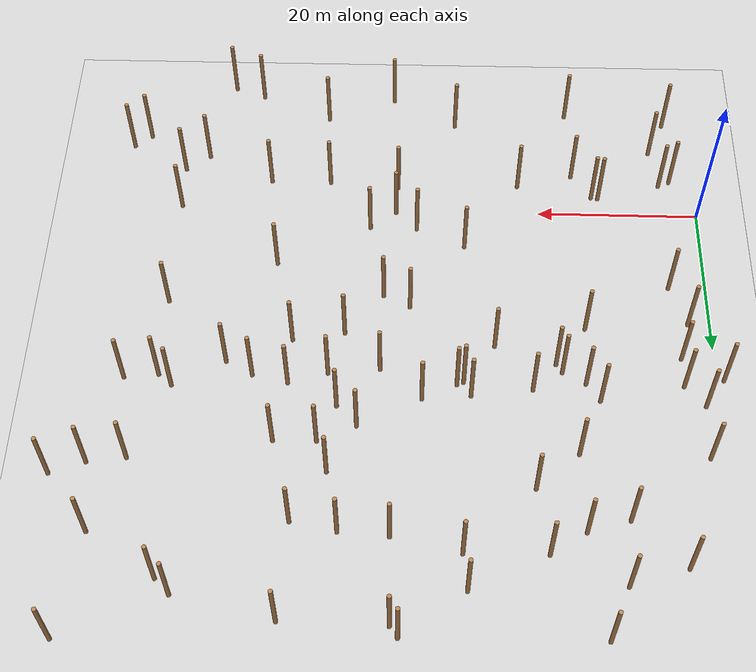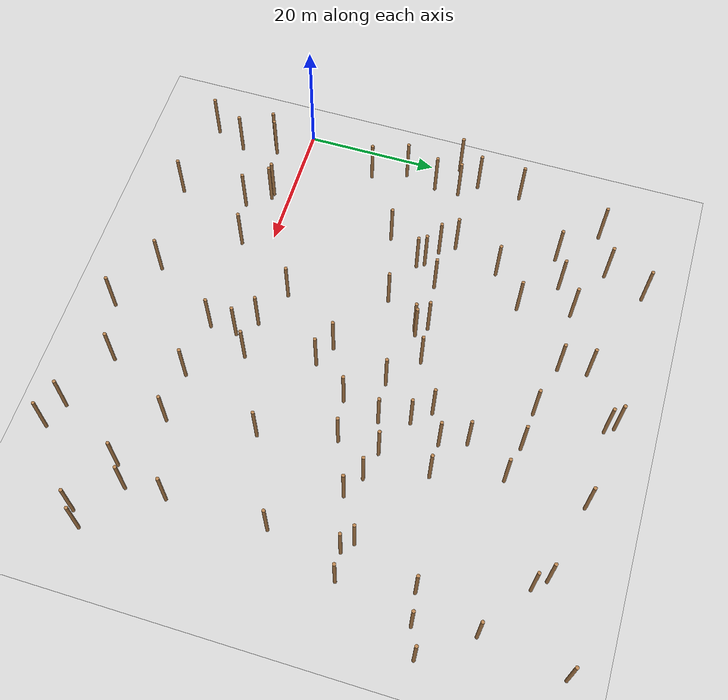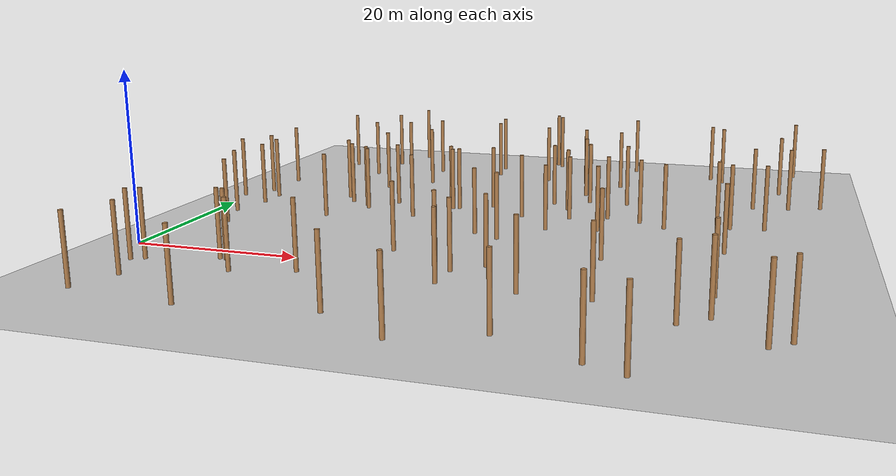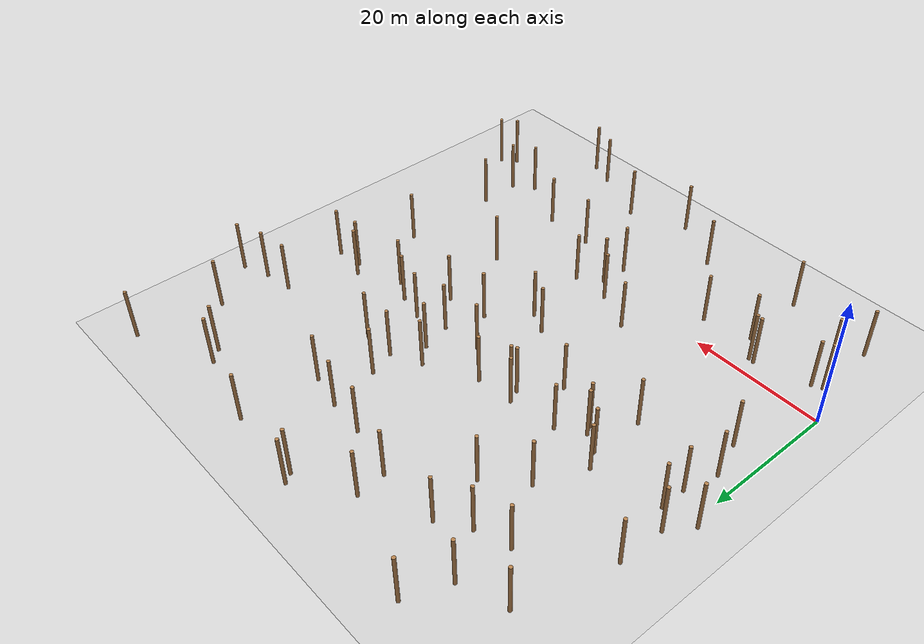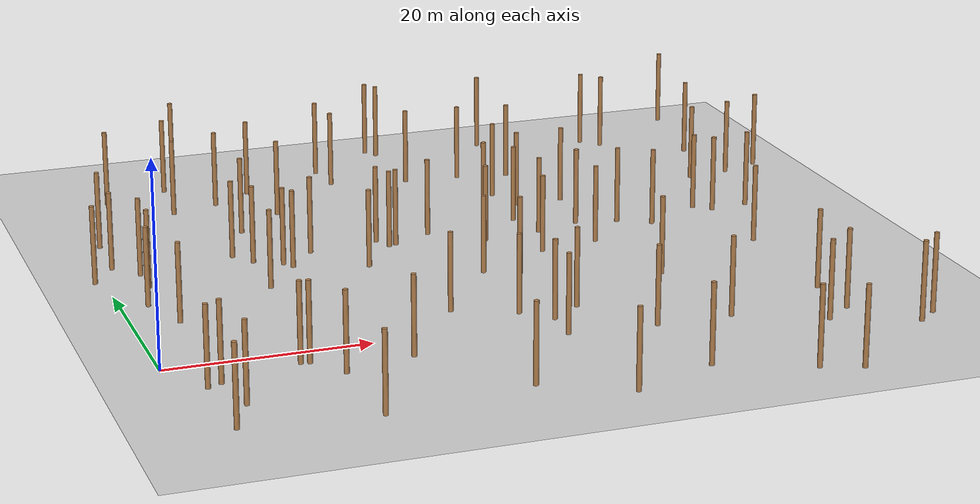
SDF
<sdf version="1.5">
 <world name="padure_tactica">
  <include><uri>model://sun</uri></include>
  <include><uri>model://ground_plane</uri></include>
  <model name="tree_1">
   <static>true</static>
   <pose>65.14 -0.28 4.0 0 0 0</pose>
   <link name="link">
    <collision name="collision">
     <geometry><cylinder><radius>0.25</radius><length>8.0</length></cylinder></geometry>
    </collision>
    <visual name="visual">
     <geometry><cylinder><radius>0.25</radius><length>8.0</length></cylinder></geometry>
     <material>
      <script><uri>file://media/materials/scripts/gazebo.material</uri><name>Gazebo/Wood</name></script>
     </material>
    </visual>
   </link>
  </model>
  <model name="tree_53">
   <static>true</static>
   <pose>54.32 24.84 4.0 0 0 0</pose>
   <link name="link">
    <collision name="collision">
     <geometry><cylinder><radius>0.25</radius><length>8.0</length></cylinder></geometry>
    </collision>
    <visual name="visual">
     <geometry><cylinder><radius>0.25</radius><length>8.0</length></cylinder></geometry>
     <material>
      <script><uri>file://media/materials/scripts/gazebo.material</uri><name>Gazebo/Wood</name></script>
     </material>
    </visual>
   </link>
  </model>
  <model name="tree_56">
   <static>true</static>
   <pose>69.32 25.48 4.0 0 0 0</pose>
   <link name="link">
    <collision name="collision">
     <geometry><cylinder><radius>0.25</radius><length>8.0</length></cylinder></geometry>
    </collision>
    <visual name="visual">
     <geometry><cylinder><radius>0.25</radius><length>8.0</length></cylinder></geometry>
     <material>
      <script><uri>file://media/materials/scripts/gazebo.material</uri><name>Gazebo/Wood</name></script>
     </material>
    </visual>
   </link>
  </model>
  <model name="tree_80">
   <static>true</static>
   <pose>20.35 46.98 4.0 0 0 0</pose>
   <link name="link">
    <collision name="collision">
     <geometry><cylinder><radius>0.25</radius><length>8.0</length></cylinder></geometry>
    </collision>
    <visual name="visual">
     <geometry><cylinder><radius>0.25</radius><length>8.0</length></cylinder></geometry>
     <material>
      <script><uri>file://media/materials/scripts/gazebo.material</uri><name>Gazebo/Wood</name></script>
     </material>
    </visual>
   </link>
  </model>
  <model name="tree_105">
   <static>true</static>
   <pose>38.56 -18.85 4.0 0 0 0</pose>
   <link name="link">
    <collision name="collision">
     <geometry><cylinder><radius>0.25</radius><length>8.0</length></cylinder></geometry>
    </collision>
    <visual name="visual">
     <geometry><cylinder><radius>0.25</radius><length>8.0</length></cylinder></geometry>
     <material>
      <script><uri>file://media/materials/scripts/gazebo.material</uri><name>Gazebo/Wood</name></script>
     </material>
    </visual>
   </link>
  </model>
  <model name="tree_111">
   <static>true</static>
   <pose>12.36 -2.54 4.0 0 0 0</pose>
   <link name="link">
    <collision name="collision">
     <geometry><cylinder><radius>0.25</radius><length>8.0</length></cylinder></geometry>
    </collision>
    <visual name="visual">
     <geometry><cylinder><radius>0.25</radius><length>8.0</length></cylinder></geometry>
     <material>
      <script><uri>file://media/materials/scripts/gazebo.material</uri><name>Gazebo/Wood</name></script>
     </material>
    </visual>
   </link>
  </model>
  <model name="tree_124">
   <static>true</static>
   <pose>43.71 18.72 4.0 0 0 0</pose>
   <link name="link">
    <collision name="collision">
     <geometry><cylinder><radius>0.25</radius><length>8.0</length></cylinder></geometry>
    </collision>
    <visual name="visual">
     <geometry><cylinder><radius>0.25</radius><length>8.0</length></cylinder></geometry>
     <material>
      <script><uri>file://media/materials/scripts/gazebo.material</uri><name>Gazebo/Wood</name></script>
     </material>
    </visual>
   </link>
  </model>
  <model name="tree_131">
   <static>true</static>
   <pose>22.55 -4.33 4.0 0 0 0</pose>
   <link name="link">
    <collision name="collision">
     <geometry><cylinder><radius>0.25</radius><length>8.0</length></cylinder></geometry>
    </collision>
    <visual name="visual">
     <geometry><cylinder><radius>0.25</radius><length>8.0</length></cylinder></geometry>
     <material>
      <script><uri>file://media/materials/scripts/gazebo.material</uri><name>Gazebo/Wood</name></script>
     </material>
    </visual>
   </link>
  </model>
  <model name="tree_143">
   <static>true</static>
   <pose>18.70 22.62 4.0 0 0 0</pose>
   <link name="link">
    <collision name="collision">
     <geometry><cylinder><radius>0.25</radius><length>8.0</length></cylinder></geometry>
    </collision>
    <visual name="visual">
     <geometry><cylinder><radius>0.25</radius><length>8.0</length></cylinder></geometry>
     <material>
      <script><uri>file://media/materials/scripts/gazebo.material</uri><name>Gazebo/Wood</name></script>
     </material>
    </visual>
   </link>
  </model>
  <model name="tree_144">
   <static>true</static>
   <pose>65.26 -6.29 4.0 0 0 0</pose>
   <link name="link">
    <collision name="collision">
     <geometry><cylinder><radius>0.25</radius><length>8.0</length></cylinder></geometry>
    </collision>
    <visual name="visual">
     <geometry><cylinder><radius>0.25</radius><length>8.0</length></cylinder></geometry>
     <material>
      <script><uri>file://media/materials/scripts/gazebo.material</uri><name>Gazebo/Wood</name></script>
     </material>
    </visual>
   </link>
  </model>
  <model name="tree_149">
   <static>true</static>
   <pose>62.78 50.66 4.0 0 0 0</pose>
   <link name="link">
    <collision name="collision">
     <geometry><cylinder><radius>0.25</radius><length>8.0</length></cylinder></geometry>
    </collision>
    <visual name="visual">
     <geometry><cylinder><radius>0.25</radius><length>8.0</length></cylinder></geometry>
     <material>
      <script><uri>file://media/materials/scripts/gazebo.material</uri><name>Gazebo/Wood</name></script>
     </material>
    </visual>
   </link>
  </model>
  <model name="tree_153">
   <static>true</static>
   <pose>21.58 39.05 4.0 0 0 0</pose>
   <link name="link">
    <collision name="collision">
     <geometry><cylinder><radius>0.25</radius><length>8.0</length></cylinder></geometry>
    </collision>
    <visual name="visual">
     <geometry><cylinder><radius>0.25</radius><length>8.0</length></cylinder></geometry>
     <material>
      <script><uri>file://media/materials/scripts/gazebo.material</uri><name>Gazebo/Wood</name></script>
     </material>
    </visual>
   </link>
  </model>
  <model name="tree_221">
   <static>true</static>
   <pose>4.46 -4.79 4.0 0 0 0</pose>
   <link name="link">
    <collision name="collision">
     <geometry><cylinder><radius>0.25</radius><length>8.0</length></cylinder></geometry>
    </collision>
    <visual name="visual">
     <geometry><cylinder><radius>0.25</radius><length>8.0</length></cylinder></geometry>
     <material>
      <script><uri>file://media/materials/scripts/gazebo.material</uri><name>Gazebo/Wood</name></script>
     </material>
    </visual>
   </link>
  </model>
  <model name="tree_229">
   <static>true</static>
   <pose>15.61 -6.13 4.0 0 0 0</pose>
   <link name="link">
    <collision name="collision">
     <geometry><cylinder><radius>0.25</radius><length>8.0</length></cylinder></geometry>
    </collision>
    <visual name="visual">
     <geometry><cylinder><radius>0.25</radius><length>8.0</length></cylinder></geometry>
     <material>
      <script><uri>file://media/materials/scripts/gazebo.material</uri><name>Gazebo/Wood</name></script>
     </material>
    </visual>
   </link>
  </model>
  <model name="tree_241">
   <static>true</static>
   <pose>5.40 48.29 4.0 0 0 0</pose>
   <link name="link">
    <collision name="collision">
     <geometry><cylinder><radius>0.25</radius><length>8.0</length></cylinder></geometry>
    </collision>
    <visual name="visual">
     <geometry><cylinder><radius>0.25</radius><length>8.0</length></cylinder></geometry>
     <material>
      <script><uri>file://media/materials/scripts/gazebo.material</uri><name>Gazebo/Wood</name></script>
     </material>
    </visual>
   </link>
  </model>
  <model name="tree_267">
   <static>true</static>
   <pose>44.26 28.86 4.0 0 0 0</pose>
   <link name="link">
    <collision name="collision">
     <geometry><cylinder><radius>0.25</radius><length>8.0</length></cylinder></geometry>
    </collision>
    <visual name="visual">
     <geometry><cylinder><radius>0.25</radius><length>8.0</length></cylinder></geometry>
     <material>
      <script><uri>file://media/materials/scripts/gazebo.material</uri><name>Gazebo/Wood</name></script>
     </material>
    </visual>
   </link>
  </model>
  <model name="tree_271">
   <static>true</static>
   <pose>62.36 -8.54 4.0 0 0 0</pose>
   <link name="link">
    <collision name="collision">
     <geometry><cylinder><radius>0.25</radius><length>8.0</length></cylinder></geometry>
    </collision>
    <visual name="visual">
     <geometry><cylinder><radius>0.25</radius><length>8.0</length></cylinder></geometry>
     <material>
      <script><uri>file://media/materials/scripts/gazebo.material</uri><name>Gazebo/Wood</name></script>
     </material>
    </visual>
   </link>
  </model>
  <model name="tree_276">
   <static>true</static>
   <pose>25.87 20.22 4.0 0 0 0</pose>
   <link name="link">
    <collision name="collision">
     <geometry><cylinder><radius>0.25</radius><length>8.0</length></cylinder></geometry>
    </collision>
    <visual name="visual">
     <geometry><cylinder><radius>0.25</radius><length>8.0</length></cylinder></geometry>
     <material>
      <script><uri>file://media/materials/scripts/gazebo.material</uri><name>Gazebo/Wood</name></script>
     </material>
    </visual>
   </link>
  </model>
  <model name="tree_288">
   <static>true</static>
   <pose>37.76 45.23 4.0 0 0 0</pose>
   <link name="link">
    <collision name="collision">
     <geometry><cylinder><radius>0.25</radius><length>8.0</length></cylinder></geometry>
    </collision>
    <visual name="visual">
     <geometry><cylinder><radius>0.25</radius><length>8.0</length></cylinder></geometry>
     <material>
      <script><uri>file://media/materials/scripts/gazebo.material</uri><name>Gazebo/Wood</name></script>
     </material>
    </visual>
   </link>
  </model>
  <model name="tree_304">
   <static>true</static>
   <pose>30.37 25.66 4.0 0 0 0</pose>
   <link name="link">
    <collision name="collision">
     <geometry><cylinder><radius>0.25</radius><length>8.0</length></cylinder></geometry>
    </collision>
    <visual name="visual">
     <geometry><cylinder><radius>0.25</radius><length>8.0</length></cylinder></geometry>
     <material>
      <script><uri>file://media/materials/scripts/gazebo.material</uri><name>Gazebo/Wood</name></script>
     </material>
    </visual>
   </link>
  </model>
  <model name="tree_309">
   <static>true</static>
   <pose>41.87 31.44 4.0 0 0 0</pose>
   <link name="link">
    <collision name="collision">
     <geometry><cylinder><radius>0.25</radius><length>8.0</length></cylinder></geometry>
    </collision>
    <visual name="visual">
     <geometry><cylinder><radius>0.25</radius><length>8.0</length></cylinder></geometry>
     <material>
      <script><uri>file://media/materials/scripts/gazebo.material</uri><name>Gazebo/Wood</name></script>
     </material>
    </visual>
   </link>
  </model>
  <model name="tree_318">
   <static>true</static>
   <pose>30.53 -14.52 4.0 0 0 0</pose>
   <link name="link">
    <collision name="collision">
     <geometry><cylinder><radius>0.25</radius><length>8.0</length></cylinder></geometry>
    </collision>
    <visual name="visual">
     <geometry><cylinder><radius>0.25</radius><length>8.0</length></cylinder></geometry>
     <material>
      <script><uri>file://media/materials/scripts/gazebo.material</uri><name>Gazebo/Wood</name></script>
     </material>
    </visual>
   </link>
  </model>
  <model name="tree_330">
   <static>true</static>
   <pose>41.15 2.73 4.0 0 0 0</pose>
   <link name="link">
    <collision name="collision">
     <geometry><cylinder><radius>0.25</radius><length>8.0</length></cylinder></geometry>
    </collision>
    <visual name="visual">
     <geometry><cylinder><radius>0.25</radius><length>8.0</length></cylinder></geometry>
     <material>
      <script><uri>file://media/materials/scripts/gazebo.material</uri><name>Gazebo/Wood</name></script>
     </material>
    </visual>
   </link>
  </model>
  <model name="tree_335">
   <static>true</static>
   <pose>59.87 -20.58 4.0 0 0 0</pose>
   <link name="link">
    <collision name="collision">
     <geometry><cylinder><radius>0.25</radius><length>8.0</length></cylinder></geometry>
    </collision>
    <visual name="visual">
     <geometry><cylinder><radius>0.25</radius><length>8.0</length></cylinder></geometry>
     <material>
      <script><uri>file://media/materials/scripts/gazebo.material</uri><name>Gazebo/Wood</name></script>
     </material>
    </visual>
   </link>
  </model>
  <model name="tree_340">
   <static>true</static>
   <pose>65.28 25.00 4.0 0 0 0</pose>
   <link name="link">
    <collision name="collision">
     <geometry><cylinder><radius>0.25</radius><length>8.0</length></cylinder></geometry>
    </collision>
    <visual name="visual">
     <geometry><cylinder><radius>0.25</radius><length>8.0</length></cylinder></geometry>
     <material>
      <script><uri>file://media/materials/scripts/gazebo.material</uri><name>Gazebo/Wood</name></script>
     </material>
    </visual>
   </link>
  </model>
  <model name="tree_343">
   <static>true</static>
   <pose>4.55 11.30 4.0 0 0 0</pose>
   <link name="link">
    <collision name="collision">
     <geometry><cylinder><radius>0.25</radius><length>8.0</length></cylinder></geometry>
    </collision>
    <visual name="visual">
     <geometry><cylinder><radius>0.25</radius><length>8.0</length></cylinder></geometry>
     <material>
      <script><uri>file://media/materials/scripts/gazebo.material</uri><name>Gazebo/Wood</name></script>
     </material>
    </visual>
   </link>
  </model>
  <model name="tree_350">
   <static>true</static>
   <pose>72.39 -10.15 4.0 0 0 0</pose>
   <link name="link">
    <collision name="collision">
     <geometry><cylinder><radius>0.25</radius><length>8.0</length></cylinder></geometry>
    </collision>
    <visual name="visual">
     <geometry><cylinder><radius>0.25</radius><length>8.0</length></cylinder></geometry>
     <material>
      <script><uri>file://media/materials/scripts/gazebo.material</uri><name>Gazebo/Wood</name></script>
     </material>
    </visual>
   </link>
  </model>
  <model name="tree_370">
   <static>true</static>
   <pose>76.19 38.27 4.0 0 0 0</pose>
   <link name="link">
    <collision name="collision">
     <geometry><cylinder><radius>0.25</radius><length>8.0</length></cylinder></geometry>
    </collision>
    <visual name="visual">
     <geometry><cylinder><radius>0.25</radius><length>8.0</length></cylinder></geometry>
     <material>
      <script><uri>file://media/materials/scripts/gazebo.material</uri><name>Gazebo/Wood</name></script>
     </material>
    </visual>
   </link>
  </model>
  <model name="tree_392">
   <static>true</static>
   <pose>13.19 -2.69 4.0 0 0 0</pose>
   <link name="link">
    <collision name="collision">
     <geometry><cylinder><radius>0.25</radius><length>8.0</length></cylinder></geometry>
    </collision>
    <visual name="visual">
     <geometry><cylinder><radius>0.25</radius><length>8.0</length></cylinder></geometry>
     <material>
      <script><uri>file://media/materials/scripts/gazebo.material</uri><name>Gazebo/Wood</name></script>
     </material>
    </visual>
   </link>
  </model>
  <model name="tree_407">
   <static>true</static>
   <pose>28.74 27.16 4.0 0 0 0</pose>
   <link name="link">
    <collision name="collision">
     <geometry><cylinder><radius>0.25</radius><length>8.0</length></cylinder></geometry>
    </collision>
    <visual name="visual">
     <geometry><cylinder><radius>0.25</radius><length>8.0</length></cylinder></geometry>
     <material>
      <script><uri>file://media/materials/scripts/gazebo.material</uri><name>Gazebo/Wood</name></script>
     </material>
    </visual>
   </link>
  </model>
  <model name="tree_408">
   <static>true</static>
   <pose>16.20 44.26 4.0 0 0 0</pose>
   <link name="link">
    <collision name="collision">
     <geometry><cylinder><radius>0.25</radius><length>8.0</length></cylinder></geometry>
    </collision>
    <visual name="visual">
     <geometry><cylinder><radius>0.25</radius><length>8.0</length></cylinder></geometry>
     <material>
      <script><uri>file://media/materials/scripts/gazebo.material</uri><name>Gazebo/Wood</name></script>
     </material>
    </visual>
   </link>
  </model>
  <model name="tree_412">
   <static>true</static>
   <pose>48.82 43.67 4.0 0 0 0</pose>
   <link name="link">
    <collision name="collision">
     <geometry><cylinder><radius>0.25</radius><length>8.0</length></cylinder></geometry>
    </collision>
    <visual name="visual">
     <geometry><cylinder><radius>0.25</radius><length>8.0</length></cylinder></geometry>
     <material>
      <script><uri>file://media/materials/scripts/gazebo.material</uri><name>Gazebo/Wood</name></script>
     </material>
    </visual>
   </link>
  </model>
  <model name="tree_420">
   <static>true</static>
   <pose>39.22 13.14 4.0 0 0 0</pose>
   <link name="link">
    <collision name="collision">
     <geometry><cylinder><radius>0.25</radius><length>8.0</length></cylinder></geometry>
    </collision>
    <visual name="visual">
     <geometry><cylinder><radius>0.25</radius><length>8.0</length></cylinder></geometry>
     <material>
      <script><uri>file://media/materials/scripts/gazebo.material</uri><name>Gazebo/Wood</name></script>
     </material>
    </visual>
   </link>
  </model>
  <model name="tree_450">
   <static>true</static>
   <pose>1.78 34.79 4.0 0 0 0</pose>
   <link name="link">
    <collision name="collision">
     <geometry><cylinder><radius>0.25</radius><length>8.0</length></cylinder></geometry>
    </collision>
    <visual name="visual">
     <geometry><cylinder><radius>0.25</radius><length>8.0</length></cylinder></geometry>
     <material>
      <script><uri>file://media/materials/scripts/gazebo.material</uri><name>Gazebo/Wood</name></script>
     </material>
    </visual>
   </link>
  </model>
  <model name="tree_452">
   <static>true</static>
   <pose>5.33 -10.28 4.0 0 0 0</pose>
   <link name="link">
    <collision name="collision">
     <geometry><cylinder><radius>0.25</radius><length>8.0</length></cylinder></geometry>
    </collision>
    <visual name="visual">
     <geometry><cylinder><radius>0.25</radius><length>8.0</length></cylinder></geometry>
     <material>
      <script><uri>file://media/materials/scripts/gazebo.material</uri><name>Gazebo/Wood</name></script>
     </material>
    </visual>
   </link>
  </model>
  <model name="tree_454">
   <static>true</static>
   <pose>61.05 52.48 4.0 0 0 0</pose>
   <link name="link">
    <collision name="collision">
     <geometry><cylinder><radius>0.25</radius><length>8.0</length></cylinder></geometry>
    </collision>
    <visual name="visual">
     <geometry><cylinder><radius>0.25</radius><length>8.0</length></cylinder></geometry>
     <material>
      <script><uri>file://media/materials/scripts/gazebo.material</uri><name>Gazebo/Wood</name></script>
     </material>
    </visual>
   </link>
  </model>
  <model name="tree_457">
   <static>true</static>
   <pose>3.18 -15.12 4.0 0 0 0</pose>
   <link name="link">
    <collision name="collision">
     <geometry><cylinder><radius>0.25</radius><length>8.0</length></cylinder></geometry>
    </collision>
    <visual name="visual">
     <geometry><cylinder><radius>0.25</radius><length>8.0</length></cylinder></geometry>
     <material>
      <script><uri>file://media/materials/scripts/gazebo.material</uri><name>Gazebo/Wood</name></script>
     </material>
    </visual>
   </link>
  </model>
  <model name="tree_460">
   <static>true</static>
   <pose>18.01 23.73 4.0 0 0 0</pose>
   <link name="link">
    <collision name="collision">
     <geometry><cylinder><radius>0.25</radius><length>8.0</length></cylinder></geometry>
    </collision>
    <visual name="visual">
     <geometry><cylinder><radius>0.25</radius><length>8.0</length></cylinder></geometry>
     <material>
      <script><uri>file://media/materials/scripts/gazebo.material</uri><name>Gazebo/Wood</name></script>
     </material>
    </visual>
   </link>
  </model>
  <model name="tree_498">
   <static>true</static>
   <pose>45.46 24.41 4.0 0 0 0</pose>
   <link name="link">
    <collision name="collision">
     <geometry><cylinder><radius>0.25</radius><length>8.0</length></cylinder></geometry>
    </collision>
    <visual name="visual">
     <geometry><cylinder><radius>0.25</radius><length>8.0</length></cylinder></geometry>
     <material>
      <script><uri>file://media/materials/scripts/gazebo.material</uri><name>Gazebo/Wood</name></script>
     </material>
    </visual>
   </link>
  </model>
  <model name="tree_501">
   <static>true</static>
   <pose>56.03 -19.18 4.0 0 0 0</pose>
   <link name="link">
    <collision name="collision">
     <geometry><cylinder><radius>0.25</radius><length>8.0</length></cylinder></geometry>
    </collision>
    <visual name="visual">
     <geometry><cylinder><radius>0.25</radius><length>8.0</length></cylinder></geometry>
     <material>
      <script><uri>file://media/materials/scripts/gazebo.material</uri><name>Gazebo/Wood</name></script>
     </material>
    </visual>
   </link>
  </model>
  <model name="tree_534">
   <static>true</static>
   <pose>65.20 14.55 4.0 0 0 0</pose>
   <link name="link">
    <collision name="collision">
     <geometry><cylinder><radius>0.25</radius><length>8.0</length></cylinder></geometry>
    </collision>
    <visual name="visual">
     <geometry><cylinder><radius>0.25</radius><length>8.0</length></cylinder></geometry>
     <material>
      <script><uri>file://media/materials/scripts/gazebo.material</uri><name>Gazebo/Wood</name></script>
     </material>
    </visual>
   </link>
  </model>
  <model name="tree_573">
   <static>true</static>
   <pose>46.46 -4.50 4.0 0 0 0</pose>
   <link name="link">
    <collision name="collision">
     <geometry><cylinder><radius>0.25</radius><length>8.0</length></cylinder></geometry>
    </collision>
    <visual name="visual">
     <geometry><cylinder><radius>0.25</radius><length>8.0</length></cylinder></geometry>
     <material>
      <script><uri>file://media/materials/scripts/gazebo.material</uri><name>Gazebo/Wood</name></script>
     </material>
    </visual>
   </link>
  </model>
  <model name="tree_584">
   <static>true</static>
   <pose>63.65 26.44 4.0 0 0 0</pose>
   <link name="link">
    <collision name="collision">
     <geometry><cylinder><radius>0.25</radius><length>8.0</length></cylinder></geometry>
    </collision>
    <visual name="visual">
     <geometry><cylinder><radius>0.25</radius><length>8.0</length></cylinder></geometry>
     <material>
      <script><uri>file://media/materials/scripts/gazebo.material</uri><name>Gazebo/Wood</name></script>
     </material>
    </visual>
   </link>
  </model>
  <model name="tree_591">
   <static>true</static>
   <pose>16.54 34.58 4.0 0 0 0</pose>
   <link name="link">
    <collision name="collision">
     <geometry><cylinder><radius>0.25</radius><length>8.0</length></cylinder></geometry>
    </collision>
    <visual name="visual">
     <geometry><cylinder><radius>0.25</radius><length>8.0</length></cylinder></geometry>
     <material>
      <script><uri>file://media/materials/scripts/gazebo.material</uri><name>Gazebo/Wood</name></script>
     </material>
    </visual>
   </link>
  </model>
  <model name="tree_593">
   <static>true</static>
   <pose>21.53 26.20 4.0 0 0 0</pose>
   <link name="link">
    <collision name="collision">
     <geometry><cylinder><radius>0.25</radius><length>8.0</length></cylinder></geometry>
    </collision>
    <visual name="visual">
     <geometry><cylinder><radius>0.25</radius><length>8.0</length></cylinder></geometry>
     <material>
      <script><uri>file://media/materials/scripts/gazebo.material</uri><name>Gazebo/Wood</name></script>
     </material>
    </visual>
   </link>
  </model>
  <model name="tree_601">
   <static>true</static>
   <pose>67.65 36.11 4.0 0 0 0</pose>
   <link name="link">
    <collision name="collision">
     <geometry><cylinder><radius>0.25</radius><length>8.0</length></cylinder></geometry>
    </collision>
    <visual name="visual">
     <geometry><cylinder><radius>0.25</radius><length>8.0</length></cylinder></geometry>
     <material>
      <script><uri>file://media/materials/scripts/gazebo.material</uri><name>Gazebo/Wood</name></script>
     </material>
    </visual>
   </link>
  </model>
  <model name="tree_622">
   <static>true</static>
   <pose>52.44 8.56 4.0 0 0 0</pose>
   <link name="link">
    <collision name="collision">
     <geometry><cylinder><radius>0.25</radius><length>8.0</length></cylinder></geometry>
    </collision>
    <visual name="visual">
     <geometry><cylinder><radius>0.25</radius><length>8.0</length></cylinder></geometry>
     <material>
      <script><uri>file://media/materials/scripts/gazebo.material</uri><name>Gazebo/Wood</name></script>
     </material>
    </visual>
   </link>
  </model>
  <model name="tree_627">
   <static>true</static>
   <pose>45.02 37.42 4.0 0 0 0</pose>
   <link name="link">
    <collision name="collision">
     <geometry><cylinder><radius>0.25</radius><length>8.0</length></cylinder></geometry>
    </collision>
    <visual name="visual">
     <geometry><cylinder><radius>0.25</radius><length>8.0</length></cylinder></geometry>
     <material>
      <script><uri>file://media/materials/scripts/gazebo.material</uri><name>Gazebo/Wood</name></script>
     </material>
    </visual>
   </link>
  </model>
  <model name="tree_629">
   <static>true</static>
   <pose>70.34 -11.83 4.0 0 0 0</pose>
   <link name="link">
    <collision name="collision">
     <geometry><cylinder><radius>0.25</radius><length>8.0</length></cylinder></geometry>
    </collision>
    <visual name="visual">
     <geometry><cylinder><radius>0.25</radius><length>8.0</length></cylinder></geometry>
     <material>
      <script><uri>file://media/materials/scripts/gazebo.material</uri><name>Gazebo/Wood</name></script>
     </material>
    </visual>
   </link>
  </model>
  <model name="tree_642">
   <static>true</static>
   <pose>70.91 45.33 4.0 0 0 0</pose>
   <link name="link">
    <collision name="collision">
     <geometry><cylinder><radius>0.25</radius><length>8.0</length></cylinder></geometry>
    </collision>
    <visual name="visual">
     <geometry><cylinder><radius>0.25</radius><length>8.0</length></cylinder></geometry>
     <material>
      <script><uri>file://media/materials/scripts/gazebo.material</uri><name>Gazebo/Wood</name></script>
     </material>
    </visual>
   </link>
  </model>
  <model name="tree_645">
   <static>true</static>
   <pose>37.97 0.24 4.0 0 0 0</pose>
   <link name="link">
    <collision name="collision">
     <geometry><cylinder><radius>0.25</radius><length>8.0</length></cylinder></geometry>
    </collision>
    <visual name="visual">
     <geometry><cylinder><radius>0.25</radius><length>8.0</length></cylinder></geometry>
     <material>
      <script><uri>file://media/materials/scripts/gazebo.material</uri><name>Gazebo/Wood</name></script>
     </material>
    </visual>
   </link>
  </model>
  <model name="tree_664">
   <static>true</static>
   <pose>54.01 -4.57 4.0 0 0 0</pose>
   <link name="link">
    <collision name="collision">
     <geometry><cylinder><radius>0.25</radius><length>8.0</length></cylinder></geometry>
    </collision>
    <visual name="visual">
     <geometry><cylinder><radius>0.25</radius><length>8.0</length></cylinder></geometry>
     <material>
      <script><uri>file://media/materials/scripts/gazebo.material</uri><name>Gazebo/Wood</name></script>
     </material>
    </visual>
   </link>
  </model>
  <model name="tree_680">
   <static>true</static>
   <pose>47.12 -15.41 4.0 0 0 0</pose>
   <link name="link">
    <collision name="collision">
     <geometry><cylinder><radius>0.25</radius><length>8.0</length></cylinder></geometry>
    </collision>
    <visual name="visual">
     <geometry><cylinder><radius>0.25</radius><length>8.0</length></cylinder></geometry>
     <material>
      <script><uri>file://media/materials/scripts/gazebo.material</uri><name>Gazebo/Wood</name></script>
     </material>
    </visual>
   </link>
  </model>
  <model name="tree_683">
   <static>true</static>
   <pose>29.79 47.05 4.0 0 0 0</pose>
   <link name="link">
    <collision name="collision">
     <geometry><cylinder><radius>0.25</radius><length>8.0</length></cylinder></geometry>
    </collision>
    <visual name="visual">
     <geometry><cylinder><radius>0.25</radius><length>8.0</length></cylinder></geometry>
     <material>
      <script><uri>file://media/materials/scripts/gazebo.material</uri><name>Gazebo/Wood</name></script>
     </material>
    </visual>
   </link>
  </model>
  <model name="tree_726">
   <static>true</static>
   <pose>35.34 2.83 4.0 0 0 0</pose>
   <link name="link">
    <collision name="collision">
     <geometry><cylinder><radius>0.25</radius><length>8.0</length></cylinder></geometry>
    </collision>
    <visual name="visual">
     <geometry><cylinder><radius>0.25</radius><length>8.0</length></cylinder></geometry>
     <material>
      <script><uri>file://media/materials/scripts/gazebo.material</uri><name>Gazebo/Wood</name></script>
     </material>
    </visual>
   </link>
  </model>
  <model name="tree_737">
   <static>true</static>
   <pose>2.68 16.59 4.0 0 0 0</pose>
   <link name="link">
    <collision name="collision">
     <geometry><cylinder><radius>0.25</radius><length>8.0</length></cylinder></geometry>
    </collision>
    <visual name="visual">
     <geometry><cylinder><radius>0.25</radius><length>8.0</length></cylinder></geometry>
     <material>
      <script><uri>file://media/materials/scripts/gazebo.material</uri><name>Gazebo/Wood</name></script>
     </material>
    </visual>
   </link>
  </model>
  <model name="tree_769">
   <static>true</static>
   <pose>57.53 23.03 4.0 0 0 0</pose>
   <link name="link">
    <collision name="collision">
     <geometry><cylinder><radius>0.25</radius><length>8.0</length></cylinder></geometry>
    </collision>
    <visual name="visual">
     <geometry><cylinder><radius>0.25</radius><length>8.0</length></cylinder></geometry>
     <material>
      <script><uri>file://media/materials/scripts/gazebo.material</uri><name>Gazebo/Wood</name></script>
     </material>
    </visual>
   </link>
  </model>
  <model name="tree_812">
   <static>true</static>
   <pose>43.51 44.77 4.0 0 0 0</pose>
   <link name="link">
    <collision name="collision">
     <geometry><cylinder><radius>0.25</radius><length>8.0</length></cylinder></geometry>
    </collision>
    <visual name="visual">
     <geometry><cylinder><radius>0.25</radius><length>8.0</length></cylinder></geometry>
     <material>
      <script><uri>file://media/materials/scripts/gazebo.material</uri><name>Gazebo/Wood</name></script>
     </material>
    </visual>
   </link>
  </model>
  <model name="tree_825">
   <static>true</static>
   <pose>29.39 5.50 4.0 0 0 0</pose>
   <link name="link">
    <collision name="collision">
     <geometry><cylinder><radius>0.25</radius><length>8.0</length></cylinder></geometry>
    </collision>
    <visual name="visual">
     <geometry><cylinder><radius>0.25</radius><length>8.0</length></cylinder></geometry>
     <material>
      <script><uri>file://media/materials/scripts/gazebo.material</uri><name>Gazebo/Wood</name></script>
     </material>
    </visual>
   </link>
  </model>
  <model name="tree_828">
   <static>true</static>
   <pose>15.03 17.52 4.0 0 0 0</pose>
   <link name="link">
    <collision name="collision">
     <geometry><cylinder><radius>0.25</radius><length>8.0</length></cylinder></geometry>
    </collision>
    <visual name="visual">
     <geometry><cylinder><radius>0.25</radius><length>8.0</length></cylinder></geometry>
     <material>
      <script><uri>file://media/materials/scripts/gazebo.material</uri><name>Gazebo/Wood</name></script>
     </material>
    </visual>
   </link>
  </model>
  <model name="tree_837">
   <static>true</static>
   <pose>12.05 50.52 4.0 0 0 0</pose>
   <link name="link">
    <collision name="collision">
     <geometry><cylinder><radius>0.25</radius><length>8.0</length></cylinder></geometry>
    </collision>
    <visual name="visual">
     <geometry><cylinder><radius>0.25</radius><length>8.0</length></cylinder></geometry>
     <material>
      <script><uri>file://media/materials/scripts/gazebo.material</uri><name>Gazebo/Wood</name></script>
     </material>
    </visual>
   </link>
  </model>
  <model name="tree_849">
   <static>true</static>
   <pose>1.58 27.99 4.0 0 0 0</pose>
   <link name="link">
    <collision name="collision">
     <geometry><cylinder><radius>0.25</radius><length>8.0</length></cylinder></geometry>
    </collision>
    <visual name="visual">
     <geometry><cylinder><radius>0.25</radius><length>8.0</length></cylinder></geometry>
     <material>
      <script><uri>file://media/materials/scripts/gazebo.material</uri><name>Gazebo/Wood</name></script>
     </material>
    </visual>
   </link>
  </model>
  <model name="tree_854">
   <static>true</static>
   <pose>72.93 57.66 4.0 0 0 0</pose>
   <link name="link">
    <collision name="collision">
     <geometry><cylinder><radius>0.25</radius><length>8.0</length></cylinder></geometry>
    </collision>
    <visual name="visual">
     <geometry><cylinder><radius>0.25</radius><length>8.0</length></cylinder></geometry>
     <material>
      <script><uri>file://media/materials/scripts/gazebo.material</uri><name>Gazebo/Wood</name></script>
     </material>
    </visual>
   </link>
  </model>
  <model name="tree_887">
   <static>true</static>
   <pose>3.06 -5.44 4.0 0 0 0</pose>
   <link name="link">
    <collision name="collision">
     <geometry><cylinder><radius>0.25</radius><length>8.0</length></cylinder></geometry>
    </collision>
    <visual name="visual">
     <geometry><cylinder><radius>0.25</radius><length>8.0</length></cylinder></geometry>
     <material>
      <script><uri>file://media/materials/scripts/gazebo.material</uri><name>Gazebo/Wood</name></script>
     </material>
    </visual>
   </link>
  </model>
  <model name="tree_904">
   <static>true</static>
   <pose>49.89 19.83 4.0 0 0 0</pose>
   <link name="link">
    <collision name="collision">
     <geometry><cylinder><radius>0.25</radius><length>8.0</length></cylinder></geometry>
    </collision>
    <visual name="visual">
     <geometry><cylinder><radius>0.25</radius><length>8.0</length></cylinder></geometry>
     <material>
      <script><uri>file://media/materials/scripts/gazebo.material</uri><name>Gazebo/Wood</name></script>
     </material>
    </visual>
   </link>
  </model>
  <model name="tree_934">
   <static>true</static>
   <pose>16.00 -16.47 4.0 0 0 0</pose>
   <link name="link">
    <collision name="collision">
     <geometry><cylinder><radius>0.25</radius><length>8.0</length></cylinder></geometry>
    </collision>
    <visual name="visual">
     <geometry><cylinder><radius>0.25</radius><length>8.0</length></cylinder></geometry>
     <material>
      <script><uri>file://media/materials/scripts/gazebo.material</uri><name>Gazebo/Wood</name></script>
     </material>
    </visual>
   </link>
  </model>
  <model name="tree_985">
   <static>true</static>
   <pose>39.38 23.75 4.0 0 0 0</pose>
   <link name="link">
    <collision name="collision">
     <geometry><cylinder><radius>0.25</radius><length>8.0</length></cylinder></geometry>
    </collision>
    <visual name="visual">
     <geometry><cylinder><radius>0.25</radius><length>8.0</length></cylinder></geometry>
     <material>
      <script><uri>file://media/materials/scripts/gazebo.material</uri><name>Gazebo/Wood</name></script>
     </material>
    </visual>
   </link>
  </model>
  <model name="tree_987">
   <static>true</static>
   <pose>51.34 33.57 4.0 0 0 0</pose>
   <link name="link">
    <collision name="collision">
     <geometry><cylinder><radius>0.25</radius><length>8.0</length></cylinder></geometry>
    </collision>
    <visual name="visual">
     <geometry><cylinder><radius>0.25</radius><length>8.0</length></cylinder></geometry>
     <material>
      <script><uri>file://media/materials/scripts/gazebo.material</uri><name>Gazebo/Wood</name></script>
     </material>
    </visual>
   </link>
  </model>
  <model name="tree_1008">
   <static>true</static>
   <pose>46.34 33.53 4.0 0 0 0</pose>
   <link name="link">
    <collision name="collision">
     <geometry><cylinder><radius>0.25</radius><length>8.0</length></cylinder></geometry>
    </collision>
    <visual name="visual">
     <geometry><cylinder><radius>0.25</radius><length>8.0</length></cylinder></geometry>
     <material>
      <script><uri>file://media/materials/scripts/gazebo.material</uri><name>Gazebo/Wood</name></script>
     </material>
    </visual>
   </link>
  </model>
  <model name="tree_1020">
   <static>true</static>
   <pose>37.53 55.48 4.0 0 0 0</pose>
   <link name="link">
    <collision name="collision">
     <geometry><cylinder><radius>0.25</radius><length>8.0</length></cylinder></geometry>
    </collision>
    <visual name="visual">
     <geometry><cylinder><radius>0.25</radius><length>8.0</length></cylinder></geometry>
     <material>
      <script><uri>file://media/materials/scripts/gazebo.material</uri><name>Gazebo/Wood</name></script>
     </material>
    </visual>
   </link>
  </model>
  <model name="tree_1025">
   <static>true</static>
   <pose>29.58 25.31 4.0 0 0 0</pose>
   <link name="link">
    <collision name="collision">
     <geometry><cylinder><radius>0.25</radius><length>8.0</length></cylinder></geometry>
    </collision>
    <visual name="visual">
     <geometry><cylinder><radius>0.25</radius><length>8.0</length></cylinder></geometry>
     <material>
      <script><uri>file://media/materials/scripts/gazebo.material</uri><name>Gazebo/Wood</name></script>
     </material>
    </visual>
   </link>
  </model>
  <model name="tree_1026">
   <static>true</static>
   <pose>15.31 25.26 4.0 0 0 0</pose>
   <link name="link">
    <collision name="collision">
     <geometry><cylinder><radius>0.25</radius><length>8.0</length></cylinder></geometry>
    </collision>
    <visual name="visual">
     <geometry><cylinder><radius>0.25</radius><length>8.0</length></cylinder></geometry>
     <material>
      <script><uri>file://media/materials/scripts/gazebo.material</uri><name>Gazebo/Wood</name></script>
     </material>
    </visual>
   </link>
  </model>
  <model name="tree_1069">
   <static>true</static>
   <pose>34.45 27.68 4.0 0 0 0</pose>
   <link name="link">
    <collision name="collision">
     <geometry><cylinder><radius>0.25</radius><length>8.0</length></cylinder></geometry>
    </collision>
    <visual name="visual">
     <geometry><cylinder><radius>0.25</radius><length>8.0</length></cylinder></geometry>
     <material>
      <script><uri>file://media/materials/scripts/gazebo.material</uri><name>Gazebo/Wood</name></script>
     </material>
    </visual>
   </link>
  </model>
  <model name="tree_1071">
   <static>true</static>
   <pose>29.30 51.36 4.0 0 0 0</pose>
   <link name="link">
    <collision name="collision">
     <geometry><cylinder><radius>0.25</radius><length>8.0</length></cylinder></geometry>
    </collision>
    <visual name="visual">
     <geometry><cylinder><radius>0.25</radius><length>8.0</length></cylinder></geometry>
     <material>
      <script><uri>file://media/materials/scripts/gazebo.material</uri><name>Gazebo/Wood</name></script>
     </material>
    </visual>
   </link>
  </model>
  <model name="tree_1073">
   <static>true</static>
   <pose>72.14 36.76 4.0 0 0 0</pose>
   <link name="link">
    <collision name="collision">
     <geometry><cylinder><radius>0.25</radius><length>8.0</length></cylinder></geometry>
    </collision>
    <visual name="visual">
     <geometry><cylinder><radius>0.25</radius><length>8.0</length></cylinder></geometry>
     <material>
      <script><uri>file://media/materials/scripts/gazebo.material</uri><name>Gazebo/Wood</name></script>
     </material>
    </visual>
   </link>
  </model>
  <model name="tree_1081">
   <static>true</static>
   <pose>50.10 25.84 4.0 0 0 0</pose>
   <link name="link">
    <collision name="collision">
     <geometry><cylinder><radius>0.25</radius><length>8.0</length></cylinder></geometry>
    </collision>
    <visual name="visual">
     <geometry><cylinder><radius>0.25</radius><length>8.0</length></cylinder></geometry>
     <material>
      <script><uri>file://media/materials/scripts/gazebo.material</uri><name>Gazebo/Wood</name></script>
     </material>
    </visual>
   </link>
  </model>
  <model name="tree_1086">
   <static>true</static>
   <pose>13.75 27.52 4.0 0 0 0</pose>
   <link name="link">
    <collision name="collision">
     <geometry><cylinder><radius>0.25</radius><length>8.0</length></cylinder></geometry>
    </collision>
    <visual name="visual">
     <geometry><cylinder><radius>0.25</radius><length>8.0</length></cylinder></geometry>
     <material>
      <script><uri>file://media/materials/scripts/gazebo.material</uri><name>Gazebo/Wood</name></script>
     </material>
    </visual>
   </link>
  </model>
  <model name="tree_1129">
   <static>true</static>
   <pose>14.41 56.67 4.0 0 0 0</pose>
   <link name="link">
    <collision name="collision">
     <geometry><cylinder><radius>0.25</radius><length>8.0</length></cylinder></geometry>
    </collision>
    <visual name="visual">
     <geometry><cylinder><radius>0.25</radius><length>8.0</length></cylinder></geometry>
     <material>
      <script><uri>file://media/materials/scripts/gazebo.material</uri><name>Gazebo/Wood</name></script>
     </material>
    </visual>
   </link>
  </model>
  <model name="tree_1135">
   <static>true</static>
   <pose>35.99 14.76 4.0 0 0 0</pose>
   <link name="link">
    <collision name="collision">
     <geometry><cylinder><radius>0.25</radius><length>8.0</length></cylinder></geometry>
    </collision>
    <visual name="visual">
     <geometry><cylinder><radius>0.25</radius><length>8.0</length></cylinder></geometry>
     <material>
      <script><uri>file://media/materials/scripts/gazebo.material</uri><name>Gazebo/Wood</name></script>
     </material>
    </visual>
   </link>
  </model>
  <model name="tree_1140">
   <static>true</static>
   <pose>3.88 21.54 4.0 0 0 0</pose>
   <link name="link">
    <collision name="collision">
     <geometry><cylinder><radius>0.25</radius><length>8.0</length></cylinder></geometry>
    </collision>
    <visual name="visual">
     <geometry><cylinder><radius>0.25</radius><length>8.0</length></cylinder></geometry>
     <material>
      <script><uri>file://media/materials/scripts/gazebo.material</uri><name>Gazebo/Wood</name></script>
     </material>
    </visual>
   </link>
  </model>
  <model name="tree_1143">
   <static>true</static>
   <pose>49.49 55.22 4.0 0 0 0</pose>
   <link name="link">
    <collision name="collision">
     <geometry><cylinder><radius>0.25</radius><length>8.0</length></cylinder></geometry>
    </collision>
    <visual name="visual">
     <geometry><cylinder><radius>0.25</radius><length>8.0</length></cylinder></geometry>
     <material>
      <script><uri>file://media/materials/scripts/gazebo.material</uri><name>Gazebo/Wood</name></script>
     </material>
    </visual>
   </link>
  </model>
  <model name="tree_1147">
   <static>true</static>
   <pose>3.88 25.34 4.0 0 0 0</pose>
   <link name="link">
    <collision name="collision">
     <geometry><cylinder><radius>0.25</radius><length>8.0</length></cylinder></geometry>
    </collision>
    <visual name="visual">
     <geometry><cylinder><radius>0.25</radius><length>8.0</length></cylinder></geometry>
     <material>
      <script><uri>file://media/materials/scripts/gazebo.material</uri><name>Gazebo/Wood</name></script>
     </material>
    </visual>
   </link>
  </model>
  <model name="tree_1161">
   <static>true</static>
   <pose>36.65 56.78 4.0 0 0 0</pose>
   <link name="link">
    <collision name="collision">
     <geometry><cylinder><radius>0.25</radius><length>8.0</length></cylinder></geometry>
    </collision>
    <visual name="visual">
     <geometry><cylinder><radius>0.25</radius><length>8.0</length></cylinder></geometry>
     <material>
      <script><uri>file://media/materials/scripts/gazebo.material</uri><name>Gazebo/Wood</name></script>
     </material>
    </visual>
   </link>
  </model>
  <model name="tree_1163">
   <static>true</static>
   <pose>-0.83 24.43 4.0 0 0 0</pose>
   <link name="link">
    <collision name="collision">
     <geometry><cylinder><radius>0.25</radius><length>8.0</length></cylinder></geometry>
    </collision>
    <visual name="visual">
     <geometry><cylinder><radius>0.25</radius><length>8.0</length></cylinder></geometry>
     <material>
      <script><uri>file://media/materials/scripts/gazebo.material</uri><name>Gazebo/Wood</name></script>
     </material>
    </visual>
   </link>
  </model>
  <model name="tree_1166">
   <static>true</static>
   <pose>11.32 42.74 4.0 0 0 0</pose>
   <link name="link">
    <collision name="collision">
     <geometry><cylinder><radius>0.25</radius><length>8.0</length></cylinder></geometry>
    </collision>
    <visual name="visual">
     <geometry><cylinder><radius>0.25</radius><length>8.0</length></cylinder></geometry>
     <material>
      <script><uri>file://media/materials/scripts/gazebo.material</uri><name>Gazebo/Wood</name></script>
     </material>
    </visual>
   </link>
  </model>
  <model name="tree_1180">
   <static>true</static>
   <pose>37.78 -3.82 4.0 0 0 0</pose>
   <link name="link">
    <collision name="collision">
     <geometry><cylinder><radius>0.25</radius><length>8.0</length></cylinder></geometry>
    </collision>
    <visual name="visual">
     <geometry><cylinder><radius>0.25</radius><length>8.0</length></cylinder></geometry>
     <material>
      <script><uri>file://media/materials/scripts/gazebo.material</uri><name>Gazebo/Wood</name></script>
     </material>
    </visual>
   </link>
  </model>
 </world>
</sdf>
